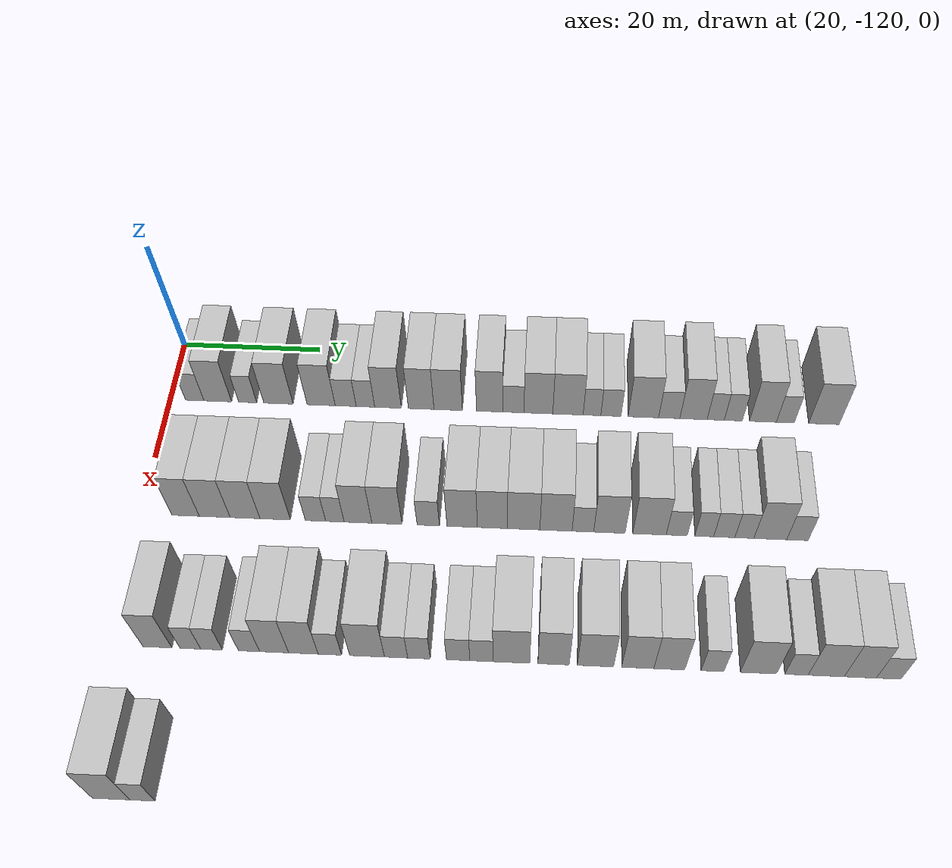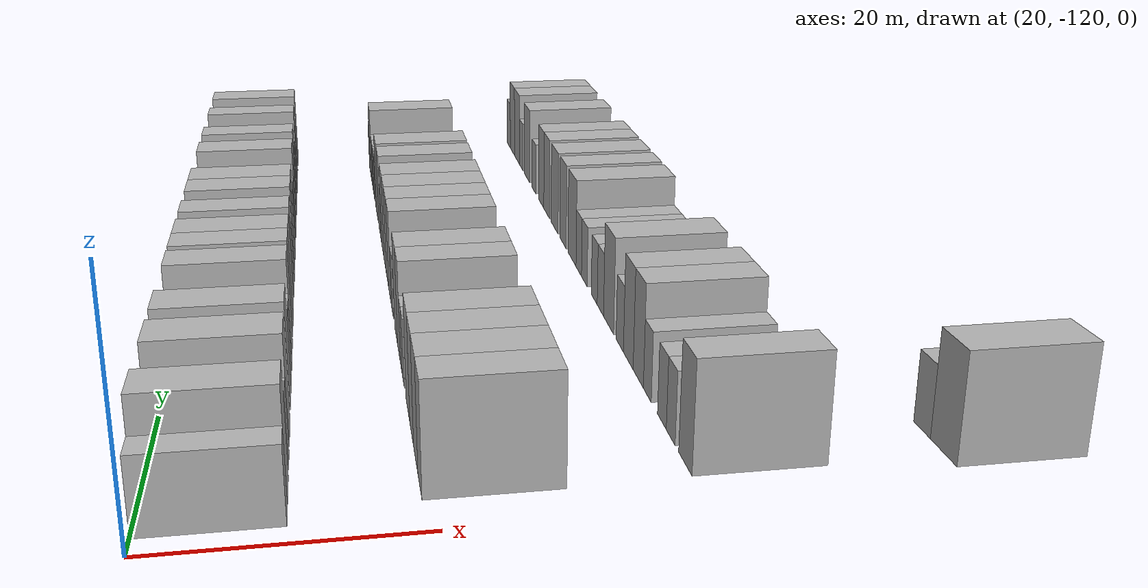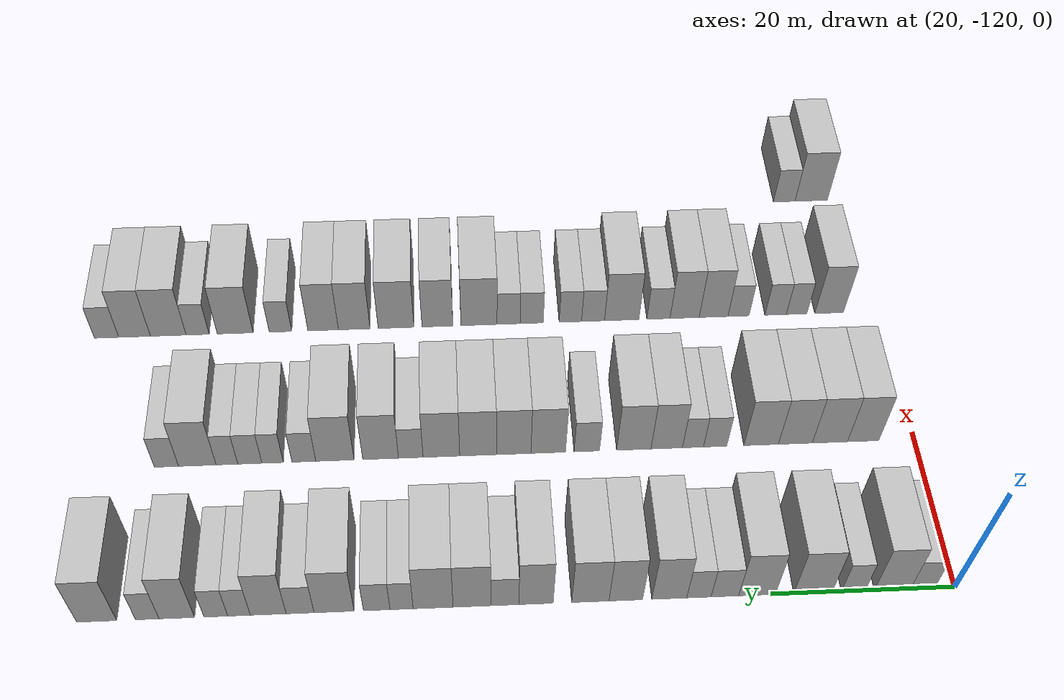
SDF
<sdf version="1.6">
 <world name="default">
  <model name="building_58">
   <static>1</static>
   <pose>25.0000 -116.5048 0 0.000000 0.000000 0.000000</pose>
   <link name="link">
    <pose>0 0 3.00 0 0 0</pose>
    <collision name="collision"><geometry><box><size>10.0000 2.6453 6.0000</size></box></geometry></collision>
    <visual name="visual">
     <cast_shadows>0</cast_shadows>
     <geometry><box><size>10.0000 2.6453 6.0000</size></box></geometry>
     <material>
      <script>
       <uri>model://HANNAS_wall/materials/scripts</uri>
       <uri>model://HANNAS_wall/materials/textures</uri>
       <name>vrc/HANNAS_wall</name>
      </script>
     </material>
    </visual>
   </link>
  </model>
  <model name="building_59">
   <static>1</static>
   <pose>25.0000 -113.2037 0 0.000000 0.000000 0.000000</pose>
   <link name="link">
    <pose>0 0 4.50 0 0 0</pose>
    <collision name="collision"><geometry><box><size>10.0000 3.9570 9.0000</size></box></geometry></collision>
    <visual name="visual">
     <cast_shadows>0</cast_shadows>
     <geometry><box><size>10.0000 3.9570 9.0000</size></box></geometry>
     <material>
      <script>
       <uri>model://HANNAS_wall/materials/scripts</uri>
       <uri>model://HANNAS_wall/materials/textures</uri>
       <name>vrc/HANNAS_wall</name>
      </script>
     </material>
    </visual>
   </link>
  </model>
  <model name="building_60">
   <static>1</static>
   <pose>25.0000 -108.9264 0 0.000000 0.000000 0.000000</pose>
   <link name="link">
    <pose>0 0 3.00 0 0 0</pose>
    <collision name="collision"><geometry><box><size>10.0000 2.5976 6.0000</size></box></geometry></collision>
    <visual name="visual">
     <cast_shadows>0</cast_shadows>
     <geometry><box><size>10.0000 2.5976 6.0000</size></box></geometry>
     <material>
      <script>
       <uri>model://HANNAS_wall/materials/scripts</uri>
       <uri>model://HANNAS_wall/materials/textures</uri>
       <name>vrc/HANNAS_wall</name>
      </script>
     </material>
    </visual>
   </link>
  </model>
  <model name="building_61">
   <static>1</static>
   <pose>25.0000 -104.5335 0 0.000000 0.000000 0.000000</pose>
   <link name="link">
    <pose>0 0 4.50 0 0 0</pose>
    <collision name="collision"><geometry><box><size>10.0000 4.1882 9.0000</size></box></geometry></collision>
    <visual name="visual">
     <cast_shadows>0</cast_shadows>
     <geometry><box><size>10.0000 4.1882 9.0000</size></box></geometry>
     <material>
      <script>
       <uri>model://HANNAS_wall/materials/scripts</uri>
       <uri>model://HANNAS_wall/materials/textures</uri>
       <name>vrc/HANNAS_wall</name>
      </script>
     </material>
    </visual>
   </link>
  </model>
  <model name="building_62">
   <static>1</static>
   <pose>25.0000 -98.4368 0 0.000000 0.000000 0.000000</pose>
   <link name="link">
    <pose>0 0 4.50 0 0 0</pose>
    <collision name="collision"><geometry><box><size>10.0000 4.0051 9.0000</size></box></geometry></collision>
    <visual name="visual">
     <cast_shadows>0</cast_shadows>
     <geometry><box><size>10.0000 4.0051 9.0000</size></box></geometry>
     <material>
      <script>
       <uri>model://HANNAS_wall/materials/scripts</uri>
       <uri>model://HANNAS_wall/materials/textures</uri>
       <name>vrc/HANNAS_wall</name>
      </script>
     </material>
    </visual>
   </link>
  </model>
  <model name="building_63">
   <static>1</static>
   <pose>25.0000 -94.9402 0 0.000000 0.000000 0.000000</pose>
   <link name="link">
    <pose>0 0 3.00 0 0 0</pose>
    <collision name="collision"><geometry><box><size>10.0000 2.9882 6.0000</size></box></geometry></collision>
    <visual name="visual">
     <cast_shadows>0</cast_shadows>
     <geometry><box><size>10.0000 2.9882 6.0000</size></box></geometry>
     <material>
      <script>
       <uri>model://HANNAS_wall/materials/scripts</uri>
       <uri>model://HANNAS_wall/materials/textures</uri>
       <name>vrc/HANNAS_wall</name>
      </script>
     </material>
    </visual>
   </link>
  </model>
  <model name="building_64">
   <static>1</static>
   <pose>25.0000 -92.1281 0 0.000000 0.000000 0.000000</pose>
   <link name="link">
    <pose>0 0 3.00 0 0 0</pose>
    <collision name="collision"><geometry><box><size>10.0000 2.6359 6.0000</size></box></geometry></collision>
    <visual name="visual">
     <cast_shadows>0</cast_shadows>
     <geometry><box><size>10.0000 2.6359 6.0000</size></box></geometry>
     <material>
      <script>
       <uri>model://HANNAS_wall/materials/scripts</uri>
       <uri>model://HANNAS_wall/materials/textures</uri>
       <name>vrc/HANNAS_wall</name>
      </script>
     </material>
    </visual>
   </link>
  </model>
  <model name="building_65">
   <static>1</static>
   <pose>25.0000 -88.9158 0 0.000000 0.000000 0.000000</pose>
   <link name="link">
    <pose>0 0 4.50 0 0 0</pose>
    <collision name="collision"><geometry><box><size>10.0000 3.7887 9.0000</size></box></geometry></collision>
    <visual name="visual">
     <cast_shadows>0</cast_shadows>
     <geometry><box><size>10.0000 3.7887 9.0000</size></box></geometry>
     <material>
      <script>
       <uri>model://HANNAS_wall/materials/scripts</uri>
       <uri>model://HANNAS_wall/materials/textures</uri>
       <name>vrc/HANNAS_wall</name>
      </script>
     </material>
    </visual>
   </link>
  </model>
  <model name="building_66">
   <static>1</static>
   <pose>25.0000 -84.2057 0 0.000000 0.000000 0.000000</pose>
   <link name="link">
    <pose>0 0 4.50 0 0 0</pose>
    <collision name="collision"><geometry><box><size>10.0000 3.6315 9.0000</size></box></geometry></collision>
    <visual name="visual">
     <cast_shadows>0</cast_shadows>
     <geometry><box><size>10.0000 3.6315 9.0000</size></box></geometry>
     <material>
      <script>
       <uri>model://HANNAS_wall/materials/scripts</uri>
       <uri>model://HANNAS_wall/materials/textures</uri>
       <name>vrc/HANNAS_wall</name>
      </script>
     </material>
    </visual>
   </link>
  </model>
  <model name="building_67">
   <static>1</static>
   <pose>25.0000 -80.3737 0 0.000000 0.000000 0.000000</pose>
   <link name="link">
    <pose>0 0 4.50 0 0 0</pose>
    <collision name="collision"><geometry><box><size>10.0000 4.0326 9.0000</size></box></geometry></collision>
    <visual name="visual">
     <cast_shadows>0</cast_shadows>
     <geometry><box><size>10.0000 4.0326 9.0000</size></box></geometry>
     <material>
      <script>
       <uri>model://HANNAS_wall/materials/scripts</uri>
       <uri>model://HANNAS_wall/materials/textures</uri>
       <name>vrc/HANNAS_wall</name>
      </script>
     </material>
    </visual>
   </link>
  </model>
  <model name="building_68">
   <static>1</static>
   <pose>25.0000 -74.5002 0 0.000000 0.000000 0.000000</pose>
   <link name="link">
    <pose>0 0 4.50 0 0 0</pose>
    <collision name="collision"><geometry><box><size>10.0000 3.7143 9.0000</size></box></geometry></collision>
    <visual name="visual">
     <cast_shadows>0</cast_shadows>
     <geometry><box><size>10.0000 3.7143 9.0000</size></box></geometry>
     <material>
      <script>
       <uri>model://HANNAS_wall/materials/scripts</uri>
       <uri>model://HANNAS_wall/materials/textures</uri>
       <name>vrc/HANNAS_wall</name>
      </script>
     </material>
    </visual>
   </link>
  </model>
  <model name="building_69">
   <static>1</static>
   <pose>25.0000 -71.1474 0 0.000000 0.000000 0.000000</pose>
   <link name="link">
    <pose>0 0 3.00 0 0 0</pose>
    <collision name="collision"><geometry><box><size>10.0000 2.9913 6.0000</size></box></geometry></collision>
    <visual name="visual">
     <cast_shadows>0</cast_shadows>
     <geometry><box><size>10.0000 2.9913 6.0000</size></box></geometry>
     <material>
      <script>
       <uri>model://HANNAS_wall/materials/scripts</uri>
       <uri>model://HANNAS_wall/materials/textures</uri>
       <name>vrc/HANNAS_wall</name>
      </script>
     </material>
    </visual>
   </link>
  </model>
  <model name="building_70">
   <static>1</static>
   <pose>25.0000 -67.6205 0 0.000000 0.000000 0.000000</pose>
   <link name="link">
    <pose>0 0 4.50 0 0 0</pose>
    <collision name="collision"><geometry><box><size>10.0000 4.0625 9.0000</size></box></geometry></collision>
    <visual name="visual">
     <cast_shadows>0</cast_shadows>
     <geometry><box><size>10.0000 4.0625 9.0000</size></box></geometry>
     <material>
      <script>
       <uri>model://HANNAS_wall/materials/scripts</uri>
       <uri>model://HANNAS_wall/materials/textures</uri>
       <name>vrc/HANNAS_wall</name>
      </script>
     </material>
    </visual>
   </link>
  </model>
  <model name="building_71">
   <static>1</static>
   <pose>25.0000 -63.4462 0 0.000000 0.000000 0.000000</pose>
   <link name="link">
    <pose>0 0 4.50 0 0 0</pose>
    <collision name="collision"><geometry><box><size>10.0000 4.2859 9.0000</size></box></geometry></collision>
    <visual name="visual">
     <cast_shadows>0</cast_shadows>
     <geometry><box><size>10.0000 4.2859 9.0000</size></box></geometry>
     <material>
      <script>
       <uri>model://HANNAS_wall/materials/scripts</uri>
       <uri>model://HANNAS_wall/materials/textures</uri>
       <name>vrc/HANNAS_wall</name>
      </script>
     </material>
    </visual>
   </link>
  </model>
  <model name="building_72">
   <static>1</static>
   <pose>25.0000 -60.0612 0 0.000000 0.000000 0.000000</pose>
   <link name="link">
    <pose>0 0 3.00 0 0 0</pose>
    <collision name="collision"><geometry><box><size>10.0000 2.4842 6.0000</size></box></geometry></collision>
    <visual name="visual">
     <cast_shadows>0</cast_shadows>
     <geometry><box><size>10.0000 2.4842 6.0000</size></box></geometry>
     <material>
      <script>
       <uri>model://HANNAS_wall/materials/scripts</uri>
       <uri>model://HANNAS_wall/materials/textures</uri>
       <name>vrc/HANNAS_wall</name>
      </script>
     </material>
    </visual>
   </link>
  </model>
  <model name="building_73">
   <static>1</static>
   <pose>25.0000 -57.3961 0 0.000000 0.000000 0.000000</pose>
   <link name="link">
    <pose>0 0 3.00 0 0 0</pose>
    <collision name="collision"><geometry><box><size>10.0000 2.8460 6.0000</size></box></geometry></collision>
    <visual name="visual">
     <cast_shadows>0</cast_shadows>
     <geometry><box><size>10.0000 2.8460 6.0000</size></box></geometry>
     <material>
      <script>
       <uri>model://HANNAS_wall/materials/scripts</uri>
       <uri>model://HANNAS_wall/materials/textures</uri>
       <name>vrc/HANNAS_wall</name>
      </script>
     </material>
    </visual>
   </link>
  </model>
  <model name="building_74">
   <static>1</static>
   <pose>25.0000 -52.8346 0 0.000000 0.000000 0.000000</pose>
   <link name="link">
    <pose>0 0 4.50 0 0 0</pose>
    <collision name="collision"><geometry><box><size>10.0000 4.2770 9.0000</size></box></geometry></collision>
    <visual name="visual">
     <cast_shadows>0</cast_shadows>
     <geometry><box><size>10.0000 4.2770 9.0000</size></box></geometry>
     <material>
      <script>
       <uri>model://HANNAS_wall/materials/scripts</uri>
       <uri>model://HANNAS_wall/materials/textures</uri>
       <name>vrc/HANNAS_wall</name>
      </script>
     </material>
    </visual>
   </link>
  </model>
  <model name="building_75">
   <static>1</static>
   <pose>25.0000 -49.2028 0 0.000000 0.000000 0.000000</pose>
   <link name="link">
    <pose>0 0 3.00 0 0 0</pose>
    <collision name="collision"><geometry><box><size>10.0000 2.9865 6.0000</size></box></geometry></collision>
    <visual name="visual">
     <cast_shadows>0</cast_shadows>
     <geometry><box><size>10.0000 2.9865 6.0000</size></box></geometry>
     <material>
      <script>
       <uri>model://HANNAS_wall/materials/scripts</uri>
       <uri>model://HANNAS_wall/materials/textures</uri>
       <name>vrc/HANNAS_wall</name>
      </script>
     </material>
    </visual>
   </link>
  </model>
  <model name="building_76">
   <static>1</static>
   <pose>25.0000 -45.7944 0 0.000000 0.000000 0.000000</pose>
   <link name="link">
    <pose>0 0 4.50 0 0 0</pose>
    <collision name="collision"><geometry><box><size>10.0000 3.8304 9.0000</size></box></geometry></collision>
    <visual name="visual">
     <cast_shadows>0</cast_shadows>
     <geometry><box><size>10.0000 3.8304 9.0000</size></box></geometry>
     <material>
      <script>
       <uri>model://HANNAS_wall/materials/scripts</uri>
       <uri>model://HANNAS_wall/materials/textures</uri>
       <name>vrc/HANNAS_wall</name>
      </script>
     </material>
    </visual>
   </link>
  </model>
  <model name="building_77">
   <static>1</static>
   <pose>25.0000 -42.6786 0 0.000000 0.000000 0.000000</pose>
   <link name="link">
    <pose>0 0 3.00 0 0 0</pose>
    <collision name="collision"><geometry><box><size>10.0000 2.4010 6.0000</size></box></geometry></collision>
    <visual name="visual">
     <cast_shadows>0</cast_shadows>
     <geometry><box><size>10.0000 2.4010 6.0000</size></box></geometry>
     <material>
      <script>
       <uri>model://HANNAS_wall/materials/scripts</uri>
       <uri>model://HANNAS_wall/materials/textures</uri>
       <name>vrc/HANNAS_wall</name>
      </script>
     </material>
    </visual>
   </link>
  </model>
  <model name="building_78">
   <static>1</static>
   <pose>25.0000 -40.2147 0 0.000000 0.000000 0.000000</pose>
   <link name="link">
    <pose>0 0 3.00 0 0 0</pose>
    <collision name="collision"><geometry><box><size>10.0000 2.5269 6.0000</size></box></geometry></collision>
    <visual name="visual">
     <cast_shadows>0</cast_shadows>
     <geometry><box><size>10.0000 2.5269 6.0000</size></box></geometry>
     <material>
      <script>
       <uri>model://HANNAS_wall/materials/scripts</uri>
       <uri>model://HANNAS_wall/materials/textures</uri>
       <name>vrc/HANNAS_wall</name>
      </script>
     </material>
    </visual>
   </link>
  </model>
  <model name="building_79">
   <static>1</static>
   <pose>25.0000 -36.0636 0 0.000000 0.000000 0.000000</pose>
   <link name="link">
    <pose>0 0 4.50 0 0 0</pose>
    <collision name="collision"><geometry><box><size>10.0000 3.7753 9.0000</size></box></geometry></collision>
    <visual name="visual">
     <cast_shadows>0</cast_shadows>
     <geometry><box><size>10.0000 3.7753 9.0000</size></box></geometry>
     <material>
      <script>
       <uri>model://HANNAS_wall/materials/scripts</uri>
       <uri>model://HANNAS_wall/materials/textures</uri>
       <name>vrc/HANNAS_wall</name>
      </script>
     </material>
    </visual>
   </link>
  </model>
  <model name="building_80">
   <static>1</static>
   <pose>25.0000 -32.9261 0 0.000000 0.000000 0.000000</pose>
   <link name="link">
    <pose>0 0 3.00 0 0 0</pose>
    <collision name="collision"><geometry><box><size>10.0000 2.4998 6.0000</size></box></geometry></collision>
    <visual name="visual">
     <cast_shadows>0</cast_shadows>
     <geometry><box><size>10.0000 2.4998 6.0000</size></box></geometry>
     <material>
      <script>
       <uri>model://HANNAS_wall/materials/scripts</uri>
       <uri>model://HANNAS_wall/materials/textures</uri>
       <name>vrc/HANNAS_wall</name>
      </script>
     </material>
    </visual>
   </link>
  </model>
  <model name="building_81">
   <static>1</static>
   <pose>25.0000 -27.5524 0 0.000000 0.000000 0.000000</pose>
   <link name="link">
    <pose>0 0 4.50 0 0 0</pose>
    <collision name="collision"><geometry><box><size>10.0000 4.2475 9.0000</size></box></geometry></collision>
    <visual name="visual">
     <cast_shadows>0</cast_shadows>
     <geometry><box><size>10.0000 4.2475 9.0000</size></box></geometry>
     <material>
      <script>
       <uri>model://HANNAS_wall/materials/scripts</uri>
       <uri>model://HANNAS_wall/materials/textures</uri>
       <name>vrc/HANNAS_wall</name>
      </script>
     </material>
    </visual>
   </link>
  </model>
  <model name="building_229">
   <static>1</static>
   <pose>44.0000 -113.9846 0 0.000000 0.000000 0.000000</pose>
   <link name="link">
    <pose>0 0 4.50 0 0 0</pose>
    <collision name="collision"><geometry><box><size>10.0000 3.6909 9.0000</size></box></geometry></collision>
    <visual name="visual">
     <cast_shadows>0</cast_shadows>
     <geometry><box><size>10.0000 3.6909 9.0000</size></box></geometry>
     <material>
      <script>
       <uri>model://HANNAS_wall/materials/scripts</uri>
       <uri>model://HANNAS_wall/materials/textures</uri>
       <name>vrc/HANNAS_wall</name>
      </script>
     </material>
    </visual>
   </link>
  </model>
  <model name="building_230">
   <static>1</static>
   <pose>44.0000 -110.0723 0 0.000000 0.000000 0.000000</pose>
   <link name="link">
    <pose>0 0 4.50 0 0 0</pose>
    <collision name="collision"><geometry><box><size>10.0000 4.1339 9.0000</size></box></geometry></collision>
    <visual name="visual">
     <cast_shadows>0</cast_shadows>
     <geometry><box><size>10.0000 4.1339 9.0000</size></box></geometry>
     <material>
      <script>
       <uri>model://HANNAS_wall/materials/scripts</uri>
       <uri>model://HANNAS_wall/materials/textures</uri>
       <name>vrc/HANNAS_wall</name>
      </script>
     </material>
    </visual>
   </link>
  </model>
  <model name="building_231">
   <static>1</static>
   <pose>44.0000 -106.0103 0 0.000000 0.000000 0.000000</pose>
   <link name="link">
    <pose>0 0 4.50 0 0 0</pose>
    <collision name="collision"><geometry><box><size>10.0000 3.9901 9.0000</size></box></geometry></collision>
    <visual name="visual">
     <cast_shadows>0</cast_shadows>
     <geometry><box><size>10.0000 3.9901 9.0000</size></box></geometry>
     <material>
      <script>
       <uri>model://HANNAS_wall/materials/scripts</uri>
       <uri>model://HANNAS_wall/materials/textures</uri>
       <name>vrc/HANNAS_wall</name>
      </script>
     </material>
    </visual>
   </link>
  </model>
  <model name="building_232">
   <static>1</static>
   <pose>44.0000 -101.9844 0 0.000000 0.000000 0.000000</pose>
   <link name="link">
    <pose>0 0 4.50 0 0 0</pose>
    <collision name="collision"><geometry><box><size>10.0000 4.0616 9.0000</size></box></geometry></collision>
    <visual name="visual">
     <cast_shadows>0</cast_shadows>
     <geometry><box><size>10.0000 4.0616 9.0000</size></box></geometry>
     <material>
      <script>
       <uri>model://HANNAS_wall/materials/scripts</uri>
       <uri>model://HANNAS_wall/materials/textures</uri>
       <name>vrc/HANNAS_wall</name>
      </script>
     </material>
    </visual>
   </link>
  </model>
  <model name="building_233">
   <static>1</static>
   <pose>44.0000 -96.5949 0 0.000000 0.000000 0.000000</pose>
   <link name="link">
    <pose>0 0 3.00 0 0 0</pose>
    <collision name="collision"><geometry><box><size>10.0000 2.7174 6.0000</size></box></geometry></collision>
    <visual name="visual">
     <cast_shadows>0</cast_shadows>
     <geometry><box><size>10.0000 2.7174 6.0000</size></box></geometry>
     <material>
      <script>
       <uri>model://HANNAS_wall/materials/scripts</uri>
       <uri>model://HANNAS_wall/materials/textures</uri>
       <name>vrc/HANNAS_wall</name>
      </script>
     </material>
    </visual>
   </link>
  </model>
  <model name="building_234">
   <static>1</static>
   <pose>44.0000 -94.0045 0 0.000000 0.000000 0.000000</pose>
   <link name="link">
    <pose>0 0 3.00 0 0 0</pose>
    <collision name="collision"><geometry><box><size>10.0000 2.4634 6.0000</size></box></geometry></collision>
    <visual name="visual">
     <cast_shadows>0</cast_shadows>
     <geometry><box><size>10.0000 2.4634 6.0000</size></box></geometry>
     <material>
      <script>
       <uri>model://HANNAS_wall/materials/scripts</uri>
       <uri>model://HANNAS_wall/materials/textures</uri>
       <name>vrc/HANNAS_wall</name>
      </script>
     </material>
    </visual>
   </link>
  </model>
  <model name="building_235">
   <static>1</static>
   <pose>44.0000 -90.9316 0 0.000000 0.000000 0.000000</pose>
   <link name="link">
    <pose>0 0 4.50 0 0 0</pose>
    <collision name="collision"><geometry><box><size>10.0000 3.6824 9.0000</size></box></geometry></collision>
    <visual name="visual">
     <cast_shadows>0</cast_shadows>
     <geometry><box><size>10.0000 3.6824 9.0000</size></box></geometry>
     <material>
      <script>
       <uri>model://HANNAS_wall/materials/scripts</uri>
       <uri>model://HANNAS_wall/materials/textures</uri>
       <name>vrc/HANNAS_wall</name>
      </script>
     </material>
    </visual>
   </link>
  </model>
  <model name="building_236">
   <static>1</static>
   <pose>44.0000 -87.0834 0 0.000000 0.000000 0.000000</pose>
   <link name="link">
    <pose>0 0 4.50 0 0 0</pose>
    <collision name="collision"><geometry><box><size>10.0000 4.0140 9.0000</size></box></geometry></collision>
    <visual name="visual">
     <cast_shadows>0</cast_shadows>
     <geometry><box><size>10.0000 4.0140 9.0000</size></box></geometry>
     <material>
      <script>
       <uri>model://HANNAS_wall/materials/scripts</uri>
       <uri>model://HANNAS_wall/materials/textures</uri>
       <name>vrc/HANNAS_wall</name>
      </script>
     </material>
    </visual>
   </link>
  </model>
  <model name="building_237">
   <static>1</static>
   <pose>44.0000 -81.5937 0 0.000000 0.000000 0.000000</pose>
   <link name="link">
    <pose>0 0 3.00 0 0 0</pose>
    <collision name="collision"><geometry><box><size>10.0000 2.9654 6.0000</size></box></geometry></collision>
    <visual name="visual">
     <cast_shadows>0</cast_shadows>
     <geometry><box><size>10.0000 2.9654 6.0000</size></box></geometry>
     <material>
      <script>
       <uri>model://HANNAS_wall/materials/scripts</uri>
       <uri>model://HANNAS_wall/materials/textures</uri>
       <name>vrc/HANNAS_wall</name>
      </script>
     </material>
    </visual>
   </link>
  </model>
  <model name="building_238">
   <static>1</static>
   <pose>44.0000 -77.0973 0 0.000000 0.000000 0.000000</pose>
   <link name="link">
    <pose>0 0 4.50 0 0 0</pose>
    <collision name="collision"><geometry><box><size>10.0000 4.0274 9.0000</size></box></geometry></collision>
    <visual name="visual">
     <cast_shadows>0</cast_shadows>
     <geometry><box><size>10.0000 4.0274 9.0000</size></box></geometry>
     <material>
      <script>
       <uri>model://HANNAS_wall/materials/scripts</uri>
       <uri>model://HANNAS_wall/materials/textures</uri>
       <name>vrc/HANNAS_wall</name>
      </script>
     </material>
    </visual>
   </link>
  </model>
  <model name="building_239">
   <static>1</static>
   <pose>44.0000 -73.0815 0 0.000000 0.000000 0.000000</pose>
   <link name="link">
    <pose>0 0 4.50 0 0 0</pose>
    <collision name="collision"><geometry><box><size>10.0000 4.0043 9.0000</size></box></geometry></collision>
    <visual name="visual">
     <cast_shadows>0</cast_shadows>
     <geometry><box><size>10.0000 4.0043 9.0000</size></box></geometry>
     <material>
      <script>
       <uri>model://HANNAS_wall/materials/scripts</uri>
       <uri>model://HANNAS_wall/materials/textures</uri>
       <name>vrc/HANNAS_wall</name>
      </script>
     </material>
    </visual>
   </link>
  </model>
  <model name="building_240">
   <static>1</static>
   <pose>44.0000 -68.9531 0 0.000000 0.000000 0.000000</pose>
   <link name="link">
    <pose>0 0 4.50 0 0 0</pose>
    <collision name="collision"><geometry><box><size>10.0000 4.2524 9.0000</size></box></geometry></collision>
    <visual name="visual">
     <cast_shadows>0</cast_shadows>
     <geometry><box><size>10.0000 4.2524 9.0000</size></box></geometry>
     <material>
      <script>
       <uri>model://HANNAS_wall/materials/scripts</uri>
       <uri>model://HANNAS_wall/materials/textures</uri>
       <name>vrc/HANNAS_wall</name>
      </script>
     </material>
    </visual>
   </link>
  </model>
  <model name="building_241">
   <static>1</static>
   <pose>44.0000 -64.7025 0 0.000000 0.000000 0.000000</pose>
   <link name="link">
    <pose>0 0 4.50 0 0 0</pose>
    <collision name="collision"><geometry><box><size>10.0000 4.2488 9.0000</size></box></geometry></collision>
    <visual name="visual">
     <cast_shadows>0</cast_shadows>
     <geometry><box><size>10.0000 4.2488 9.0000</size></box></geometry>
     <material>
      <script>
       <uri>model://HANNAS_wall/materials/scripts</uri>
       <uri>model://HANNAS_wall/materials/textures</uri>
       <name>vrc/HANNAS_wall</name>
      </script>
     </material>
    </visual>
   </link>
  </model>
  <model name="building_242">
   <static>1</static>
   <pose>44.0000 -61.1537 0 0.000000 0.000000 0.000000</pose>
   <link name="link">
    <pose>0 0 3.00 0 0 0</pose>
    <collision name="collision"><geometry><box><size>10.0000 2.8488 6.0000</size></box></geometry></collision>
    <visual name="visual">
     <cast_shadows>0</cast_shadows>
     <geometry><box><size>10.0000 2.8488 6.0000</size></box></geometry>
     <material>
      <script>
       <uri>model://HANNAS_wall/materials/scripts</uri>
       <uri>model://HANNAS_wall/materials/textures</uri>
       <name>vrc/HANNAS_wall</name>
      </script>
     </material>
    </visual>
   </link>
  </model>
  <model name="building_243">
   <static>1</static>
   <pose>44.0000 -57.6625 0 0.000000 0.000000 0.000000</pose>
   <link name="link">
    <pose>0 0 4.50 0 0 0</pose>
    <collision name="collision"><geometry><box><size>10.0000 4.1336 9.0000</size></box></geometry></collision>
    <visual name="visual">
     <cast_shadows>0</cast_shadows>
     <geometry><box><size>10.0000 4.1336 9.0000</size></box></geometry>
     <material>
      <script>
       <uri>model://HANNAS_wall/materials/scripts</uri>
       <uri>model://HANNAS_wall/materials/textures</uri>
       <name>vrc/HANNAS_wall</name>
      </script>
     </material>
    </visual>
   </link>
  </model>
  <model name="building_244">
   <static>1</static>
   <pose>44.0000 -52.3863 0 0.000000 0.000000 0.000000</pose>
   <link name="link">
    <pose>0 0 4.50 0 0 0</pose>
    <collision name="collision"><geometry><box><size>10.0000 4.4188 9.0000</size></box></geometry></collision>
    <visual name="visual">
     <cast_shadows>0</cast_shadows>
     <geometry><box><size>10.0000 4.4188 9.0000</size></box></geometry>
     <material>
      <script>
       <uri>model://HANNAS_wall/materials/scripts</uri>
       <uri>model://HANNAS_wall/materials/textures</uri>
       <name>vrc/HANNAS_wall</name>
      </script>
     </material>
    </visual>
   </link>
  </model>
  <model name="building_245">
   <static>1</static>
   <pose>44.0000 -48.8035 0 0.000000 0.000000 0.000000</pose>
   <link name="link">
    <pose>0 0 3.00 0 0 0</pose>
    <collision name="collision"><geometry><box><size>10.0000 2.7468 6.0000</size></box></geometry></collision>
    <visual name="visual">
     <cast_shadows>0</cast_shadows>
     <geometry><box><size>10.0000 2.7468 6.0000</size></box></geometry>
     <material>
      <script>
       <uri>model://HANNAS_wall/materials/scripts</uri>
       <uri>model://HANNAS_wall/materials/textures</uri>
       <name>vrc/HANNAS_wall</name>
      </script>
     </material>
    </visual>
   </link>
  </model>
  <model name="building_246">
   <static>1</static>
   <pose>44.0000 -45.2013 0 0.000000 0.000000 0.000000</pose>
   <link name="link">
    <pose>0 0 3.00 0 0 0</pose>
    <collision name="collision"><geometry><box><size>10.0000 2.4577 6.0000</size></box></geometry></collision>
    <visual name="visual">
     <cast_shadows>0</cast_shadows>
     <geometry><box><size>10.0000 2.4577 6.0000</size></box></geometry>
     <material>
      <script>
       <uri>model://HANNAS_wall/materials/scripts</uri>
       <uri>model://HANNAS_wall/materials/textures</uri>
       <name>vrc/HANNAS_wall</name>
      </script>
     </material>
    </visual>
   </link>
  </model>
  <model name="building_247">
   <static>1</static>
   <pose>44.0000 -42.5832 0 0.000000 0.000000 0.000000</pose>
   <link name="link">
    <pose>0 0 3.00 0 0 0</pose>
    <collision name="collision"><geometry><box><size>10.0000 2.7784 6.0000</size></box></geometry></collision>
    <visual name="visual">
     <cast_shadows>0</cast_shadows>
     <geometry><box><size>10.0000 2.7784 6.0000</size></box></geometry>
     <material>
      <script>
       <uri>model://HANNAS_wall/materials/scripts</uri>
       <uri>model://HANNAS_wall/materials/textures</uri>
       <name>vrc/HANNAS_wall</name>
      </script>
     </material>
    </visual>
   </link>
  </model>
  <model name="building_248">
   <static>1</static>
   <pose>44.0000 -39.9499 0 0.000000 0.000000 0.000000</pose>
   <link name="link">
    <pose>0 0 3.00 0 0 0</pose>
    <collision name="collision"><geometry><box><size>10.0000 2.4882 6.0000</size></box></geometry></collision>
    <visual name="visual">
     <cast_shadows>0</cast_shadows>
     <geometry><box><size>10.0000 2.4882 6.0000</size></box></geometry>
     <material>
      <script>
       <uri>model://HANNAS_wall/materials/scripts</uri>
       <uri>model://HANNAS_wall/materials/textures</uri>
       <name>vrc/HANNAS_wall</name>
      </script>
     </material>
    </visual>
   </link>
  </model>
  <model name="building_249">
   <static>1</static>
   <pose>44.0000 -36.5507 0 0.000000 0.000000 0.000000</pose>
   <link name="link">
    <pose>0 0 4.50 0 0 0</pose>
    <collision name="collision"><geometry><box><size>10.0000 4.3102 9.0000</size></box></geometry></collision>
    <visual name="visual">
     <cast_shadows>0</cast_shadows>
     <geometry><box><size>10.0000 4.3102 9.0000</size></box></geometry>
     <material>
      <script>
       <uri>model://HANNAS_wall/materials/scripts</uri>
       <uri>model://HANNAS_wall/materials/textures</uri>
       <name>vrc/HANNAS_wall</name>
      </script>
     </material>
    </visual>
   </link>
  </model>
  <model name="building_250">
   <static>1</static>
   <pose>44.0000 -33.0035 0 0.000000 0.000000 0.000000</pose>
   <link name="link">
    <pose>0 0 3.00 0 0 0</pose>
    <collision name="collision"><geometry><box><size>10.0000 2.7840 6.0000</size></box></geometry></collision>
    <visual name="visual">
     <cast_shadows>0</cast_shadows>
     <geometry><box><size>10.0000 2.7840 6.0000</size></box></geometry>
     <material>
      <script>
       <uri>model://HANNAS_wall/materials/scripts</uri>
       <uri>model://HANNAS_wall/materials/textures</uri>
       <name>vrc/HANNAS_wall</name>
      </script>
     </material>
    </visual>
   </link>
  </model>
  <model name="building_403">
   <static>1</static>
   <pose>63.0000 -113.6616 0 0.000000 0.000000 0.000000</pose>
   <link name="link">
    <pose>0 0 4.50 0 0 0</pose>
    <collision name="collision"><geometry><box><size>10.0000 3.6326 9.0000</size></box></geometry></collision>
    <visual name="visual">
     <cast_shadows>0</cast_shadows>
     <geometry><box><size>10.0000 3.6326 9.0000</size></box></geometry>
     <material>
      <script>
       <uri>model://HANNAS_wall/materials/scripts</uri>
       <uri>model://HANNAS_wall/materials/textures</uri>
       <name>vrc/HANNAS_wall</name>
      </script>
     </material>
    </visual>
   </link>
  </model>
  <model name="building_404">
   <static>1</static>
   <pose>63.0000 -109.5482 0 0.000000 0.000000 0.000000</pose>
   <link name="link">
    <pose>0 0 3.00 0 0 0</pose>
    <collision name="collision"><geometry><box><size>10.0000 2.5941 6.0000</size></box></geometry></collision>
    <visual name="visual">
     <cast_shadows>0</cast_shadows>
     <geometry><box><size>10.0000 2.5941 6.0000</size></box></geometry>
     <material>
      <script>
       <uri>model://HANNAS_wall/materials/scripts</uri>
       <uri>model://HANNAS_wall/materials/textures</uri>
       <name>vrc/HANNAS_wall</name>
      </script>
     </material>
    </visual>
   </link>
  </model>
  <model name="building_405">
   <static>1</static>
   <pose>63.0000 -106.9045 0 0.000000 0.000000 0.000000</pose>
   <link name="link">
    <pose>0 0 3.00 0 0 0</pose>
    <collision name="collision"><geometry><box><size>10.0000 2.6933 6.0000</size></box></geometry></collision>
    <visual name="visual">
     <cast_shadows>0</cast_shadows>
     <geometry><box><size>10.0000 2.6933 6.0000</size></box></geometry>
     <material>
      <script>
       <uri>model://HANNAS_wall/materials/scripts</uri>
       <uri>model://HANNAS_wall/materials/textures</uri>
       <name>vrc/HANNAS_wall</name>
      </script>
     </material>
    </visual>
   </link>
  </model>
  <model name="building_406">
   <static>1</static>
   <pose>63.0000 -102.2350 0 0.000000 0.000000 0.000000</pose>
   <link name="link">
    <pose>0 0 3.00 0 0 0</pose>
    <collision name="collision"><geometry><box><size>10.0000 2.6457 6.0000</size></box></geometry></collision>
    <visual name="visual">
     <cast_shadows>0</cast_shadows>
     <geometry><box><size>10.0000 2.6457 6.0000</size></box></geometry>
     <material>
      <script>
       <uri>model://HANNAS_wall/materials/scripts</uri>
       <uri>model://HANNAS_wall/materials/textures</uri>
       <name>vrc/HANNAS_wall</name>
      </script>
     </material>
    </visual>
   </link>
  </model>
  <model name="building_407">
   <static>1</static>
   <pose>63.0000 -99.1046 0 0.000000 0.000000 0.000000</pose>
   <link name="link">
    <pose>0 0 4.50 0 0 0</pose>
    <collision name="collision"><geometry><box><size>10.0000 3.6152 9.0000</size></box></geometry></collision>
    <visual name="visual">
     <cast_shadows>0</cast_shadows>
     <geometry><box><size>10.0000 3.6152 9.0000</size></box></geometry>
     <material>
      <script>
       <uri>model://HANNAS_wall/materials/scripts</uri>
       <uri>model://HANNAS_wall/materials/textures</uri>
       <name>vrc/HANNAS_wall</name>
      </script>
     </material>
    </visual>
   </link>
  </model>
  <model name="building_408">
   <static>1</static>
   <pose>63.0000 -95.4636 0 0.000000 0.000000 0.000000</pose>
   <link name="link">
    <pose>0 0 4.50 0 0 0</pose>
    <collision name="collision"><geometry><box><size>10.0000 3.6668 9.0000</size></box></geometry></collision>
    <visual name="visual">
     <cast_shadows>0</cast_shadows>
     <geometry><box><size>10.0000 3.6668 9.0000</size></box></geometry>
     <material>
      <script>
       <uri>model://HANNAS_wall/materials/scripts</uri>
       <uri>model://HANNAS_wall/materials/textures</uri>
       <name>vrc/HANNAS_wall</name>
      </script>
     </material>
    </visual>
   </link>
  </model>
  <model name="building_409">
   <static>1</static>
   <pose>63.0000 -92.1772 0 0.000000 0.000000 0.000000</pose>
   <link name="link">
    <pose>0 0 3.00 0 0 0</pose>
    <collision name="collision"><geometry><box><size>10.0000 2.9059 6.0000</size></box></geometry></collision>
    <visual name="visual">
     <cast_shadows>0</cast_shadows>
     <geometry><box><size>10.0000 2.9059 6.0000</size></box></geometry>
     <material>
      <script>
       <uri>model://HANNAS_wall/materials/scripts</uri>
       <uri>model://HANNAS_wall/materials/textures</uri>
       <name>vrc/HANNAS_wall</name>
      </script>
     </material>
    </visual>
   </link>
  </model>
  <model name="building_410">
   <static>1</static>
   <pose>63.0000 -87.5691 0 0.000000 0.000000 0.000000</pose>
   <link name="link">
    <pose>0 0 4.50 0 0 0</pose>
    <collision name="collision"><geometry><box><size>10.0000 4.3103 9.0000</size></box></geometry></collision>
    <visual name="visual">
     <cast_shadows>0</cast_shadows>
     <geometry><box><size>10.0000 4.3103 9.0000</size></box></geometry>
     <material>
      <script>
       <uri>model://HANNAS_wall/materials/scripts</uri>
       <uri>model://HANNAS_wall/materials/textures</uri>
       <name>vrc/HANNAS_wall</name>
      </script>
     </material>
    </visual>
   </link>
  </model>
  <model name="building_411">
   <static>1</static>
   <pose>63.0000 -83.9774 0 0.000000 0.000000 0.000000</pose>
   <link name="link">
    <pose>0 0 3.00 0 0 0</pose>
    <collision name="collision"><geometry><box><size>10.0000 2.8732 6.0000</size></box></geometry></collision>
    <visual name="visual">
     <cast_shadows>0</cast_shadows>
     <geometry><box><size>10.0000 2.8732 6.0000</size></box></geometry>
     <material>
      <script>
       <uri>model://HANNAS_wall/materials/scripts</uri>
       <uri>model://HANNAS_wall/materials/textures</uri>
       <name>vrc/HANNAS_wall</name>
      </script>
     </material>
    </visual>
   </link>
  </model>
  <model name="building_412">
   <static>1</static>
   <pose>63.0000 -81.1457 0 0.000000 0.000000 0.000000</pose>
   <link name="link">
    <pose>0 0 3.00 0 0 0</pose>
    <collision name="collision"><geometry><box><size>10.0000 2.7901 6.0000</size></box></geometry></collision>
    <visual name="visual">
     <cast_shadows>0</cast_shadows>
     <geometry><box><size>10.0000 2.7901 6.0000</size></box></geometry>
     <material>
      <script>
       <uri>model://HANNAS_wall/materials/scripts</uri>
       <uri>model://HANNAS_wall/materials/textures</uri>
       <name>vrc/HANNAS_wall</name>
      </script>
     </material>
    </visual>
   </link>
  </model>
  <model name="building_413">
   <static>1</static>
   <pose>63.0000 -76.3088 0 0.000000 0.000000 0.000000</pose>
   <link name="link">
    <pose>0 0 3.00 0 0 0</pose>
    <collision name="collision"><geometry><box><size>10.0000 2.8837 6.0000</size></box></geometry></collision>
    <visual name="visual">
     <cast_shadows>0</cast_shadows>
     <geometry><box><size>10.0000 2.8837 6.0000</size></box></geometry>
     <material>
      <script>
       <uri>model://HANNAS_wall/materials/scripts</uri>
       <uri>model://HANNAS_wall/materials/textures</uri>
       <name>vrc/HANNAS_wall</name>
      </script>
     </material>
    </visual>
   </link>
  </model>
  <model name="building_414">
   <static>1</static>
   <pose>63.0000 -73.4299 0 0.000000 0.000000 0.000000</pose>
   <link name="link">
    <pose>0 0 3.00 0 0 0</pose>
    <collision name="collision"><geometry><box><size>10.0000 2.8741 6.0000</size></box></geometry></collision>
    <visual name="visual">
     <cast_shadows>0</cast_shadows>
     <geometry><box><size>10.0000 2.8741 6.0000</size></box></geometry>
     <material>
      <script>
       <uri>model://HANNAS_wall/materials/scripts</uri>
       <uri>model://HANNAS_wall/materials/textures</uri>
       <name>vrc/HANNAS_wall</name>
      </script>
     </material>
    </visual>
   </link>
  </model>
  <model name="building_415">
   <static>1</static>
   <pose>63.0000 -69.7440 0 0.000000 0.000000 0.000000</pose>
   <link name="link">
    <pose>0 0 4.50 0 0 0</pose>
    <collision name="collision"><geometry><box><size>10.0000 4.4976 9.0000</size></box></geometry></collision>
    <visual name="visual">
     <cast_shadows>0</cast_shadows>
     <geometry><box><size>10.0000 4.4976 9.0000</size></box></geometry>
     <material>
      <script>
       <uri>model://HANNAS_wall/materials/scripts</uri>
       <uri>model://HANNAS_wall/materials/textures</uri>
       <name>vrc/HANNAS_wall</name>
      </script>
     </material>
    </visual>
   </link>
  </model>
  <model name="building_416">
   <static>1</static>
   <pose>63.0000 -64.5739 0 0.000000 0.000000 0.000000</pose>
   <link name="link">
    <pose>0 0 4.50 0 0 0</pose>
    <collision name="collision"><geometry><box><size>10.0000 3.8427 9.0000</size></box></geometry></collision>
    <visual name="visual">
     <cast_shadows>0</cast_shadows>
     <geometry><box><size>10.0000 3.8427 9.0000</size></box></geometry>
     <material>
      <script>
       <uri>model://HANNAS_wall/materials/scripts</uri>
       <uri>model://HANNAS_wall/materials/textures</uri>
       <name>vrc/HANNAS_wall</name>
      </script>
     </material>
    </visual>
   </link>
  </model>
  <model name="building_417">
   <static>1</static>
   <pose>63.0000 -59.4303 0 0.000000 0.000000 0.000000</pose>
   <link name="link">
    <pose>0 0 4.50 0 0 0</pose>
    <collision name="collision"><geometry><box><size>10.0000 4.4445 9.0000</size></box></geometry></collision>
    <visual name="visual">
     <cast_shadows>0</cast_shadows>
     <geometry><box><size>10.0000 4.4445 9.0000</size></box></geometry>
     <material>
      <script>
       <uri>model://HANNAS_wall/materials/scripts</uri>
       <uri>model://HANNAS_wall/materials/textures</uri>
       <name>vrc/HANNAS_wall</name>
      </script>
     </material>
    </visual>
   </link>
  </model>
  <model name="building_418">
   <static>1</static>
   <pose>63.0000 -54.2439 0 0.000000 0.000000 0.000000</pose>
   <link name="link">
    <pose>0 0 4.50 0 0 0</pose>
    <collision name="collision"><geometry><box><size>10.0000 3.9283 9.0000</size></box></geometry></collision>
    <visual name="visual">
     <cast_shadows>0</cast_shadows>
     <geometry><box><size>10.0000 3.9283 9.0000</size></box></geometry>
     <material>
      <script>
       <uri>model://HANNAS_wall/materials/scripts</uri>
       <uri>model://HANNAS_wall/materials/textures</uri>
       <name>vrc/HANNAS_wall</name>
      </script>
     </material>
    </visual>
   </link>
  </model>
  <model name="building_419">
   <static>1</static>
   <pose>63.0000 -50.3901 0 0.000000 0.000000 0.000000</pose>
   <link name="link">
    <pose>0 0 4.50 0 0 0</pose>
    <collision name="collision"><geometry><box><size>10.0000 3.7791 9.0000</size></box></geometry></collision>
    <visual name="visual">
     <cast_shadows>0</cast_shadows>
     <geometry><box><size>10.0000 3.7791 9.0000</size></box></geometry>
     <material>
      <script>
       <uri>model://HANNAS_wall/materials/scripts</uri>
       <uri>model://HANNAS_wall/materials/textures</uri>
       <name>vrc/HANNAS_wall</name>
      </script>
     </material>
    </visual>
   </link>
  </model>
  <model name="building_420">
   <static>1</static>
   <pose>63.0000 -45.1132 0 0.000000 0.000000 0.000000</pose>
   <link name="link">
    <pose>0 0 3.00 0 0 0</pose>
    <collision name="collision"><geometry><box><size>10.0000 2.7748 6.0000</size></box></geometry></collision>
    <visual name="visual">
     <cast_shadows>0</cast_shadows>
     <geometry><box><size>10.0000 2.7748 6.0000</size></box></geometry>
     <material>
      <script>
       <uri>model://HANNAS_wall/materials/scripts</uri>
       <uri>model://HANNAS_wall/materials/textures</uri>
       <name>vrc/HANNAS_wall</name>
      </script>
     </material>
    </visual>
   </link>
  </model>
  <model name="building_421">
   <static>1</static>
   <pose>63.0000 -39.5154 0 0.000000 0.000000 0.000000</pose>
   <link name="link">
    <pose>0 0 4.50 0 0 0</pose>
    <collision name="collision"><geometry><box><size>10.0000 4.4207 9.0000</size></box></geometry></collision>
    <visual name="visual">
     <cast_shadows>0</cast_shadows>
     <geometry><box><size>10.0000 4.4207 9.0000</size></box></geometry>
     <material>
      <script>
       <uri>model://HANNAS_wall/materials/scripts</uri>
       <uri>model://HANNAS_wall/materials/textures</uri>
       <name>vrc/HANNAS_wall</name>
      </script>
     </material>
    </visual>
   </link>
  </model>
  <model name="building_422">
   <static>1</static>
   <pose>63.0000 -34.8869 0 0.000000 0.000000 0.000000</pose>
   <link name="link">
    <pose>0 0 3.00 0 0 0</pose>
    <collision name="collision"><geometry><box><size>10.0000 2.8364 6.0000</size></box></geometry></collision>
    <visual name="visual">
     <cast_shadows>0</cast_shadows>
     <geometry><box><size>10.0000 2.8364 6.0000</size></box></geometry>
     <material>
      <script>
       <uri>model://HANNAS_wall/materials/scripts</uri>
       <uri>model://HANNAS_wall/materials/textures</uri>
       <name>vrc/HANNAS_wall</name>
      </script>
     </material>
    </visual>
   </link>
  </model>
  <model name="building_423">
   <static>1</static>
   <pose>63.0000 -31.2677 0 0.000000 0.000000 0.000000</pose>
   <link name="link">
    <pose>0 0 4.50 0 0 0</pose>
    <collision name="collision"><geometry><box><size>10.0000 4.4019 9.0000</size></box></geometry></collision>
    <visual name="visual">
     <cast_shadows>0</cast_shadows>
     <geometry><box><size>10.0000 4.4019 9.0000</size></box></geometry>
     <material>
      <script>
       <uri>model://HANNAS_wall/materials/scripts</uri>
       <uri>model://HANNAS_wall/materials/textures</uri>
       <name>vrc/HANNAS_wall</name>
      </script>
     </material>
    </visual>
   </link>
  </model>
  <model name="building_424">
   <static>1</static>
   <pose>63.0000 -27.1208 0 0.000000 0.000000 0.000000</pose>
   <link name="link">
    <pose>0 0 4.50 0 0 0</pose>
    <collision name="collision"><geometry><box><size>10.0000 3.8920 9.0000</size></box></geometry></collision>
    <visual name="visual">
     <cast_shadows>0</cast_shadows>
     <geometry><box><size>10.0000 3.8920 9.0000</size></box></geometry>
     <material>
      <script>
       <uri>model://HANNAS_wall/materials/scripts</uri>
       <uri>model://HANNAS_wall/materials/textures</uri>
       <name>vrc/HANNAS_wall</name>
      </script>
     </material>
    </visual>
   </link>
  </model>
  <model name="building_425">
   <static>1</static>
   <pose>63.0000 -23.6824 0 0.000000 0.000000 0.000000</pose>
   <link name="link">
    <pose>0 0 3.00 0 0 0</pose>
    <collision name="collision"><geometry><box><size>10.0000 2.9847 6.0000</size></box></geometry></collision>
    <visual name="visual">
     <cast_shadows>0</cast_shadows>
     <geometry><box><size>10.0000 2.9847 6.0000</size></box></geometry>
     <material>
      <script>
       <uri>model://HANNAS_wall/materials/scripts</uri>
       <uri>model://HANNAS_wall/materials/textures</uri>
       <name>vrc/HANNAS_wall</name>
      </script>
     </material>
    </visual>
   </link>
  </model>
  <model name="building_580">
   <static>1</static>
   <pose>82.0000 -114.9320 0 0.000000 0.000000 0.000000</pose>
   <link name="link">
    <pose>0 0 4.50 0 0 0</pose>
    <collision name="collision"><geometry><box><size>10.0000 4.3511 9.0000</size></box></geometry></collision>
    <visual name="visual">
     <cast_shadows>0</cast_shadows>
     <geometry><box><size>10.0000 4.3511 9.0000</size></box></geometry>
     <material>
      <script>
       <uri>model://HANNAS_wall/materials/scripts</uri>
       <uri>model://HANNAS_wall/materials/textures</uri>
       <name>vrc/HANNAS_wall</name>
      </script>
     </material>
    </visual>
   </link>
  </model>
  <model name="building_581">
   <static>1</static>
   <pose>82.0000 -111.3008 0 0.000000 0.000000 0.000000</pose>
   <link name="link">
    <pose>0 0 3.00 0 0 0</pose>
    <collision name="collision"><geometry><box><size>10.0000 2.9115 6.0000</size></box></geometry></collision>
    <visual name="visual">
     <cast_shadows>0</cast_shadows>
     <geometry><box><size>10.0000 2.9115 6.0000</size></box></geometry>
     <material>
      <script>
       <uri>model://HANNAS_wall/materials/scripts</uri>
       <uri>model://HANNAS_wall/materials/textures</uri>
       <name>vrc/HANNAS_wall</name>
      </script>
     </material>
    </visual>
   </link>
  </model>
 </world>
</sdf>
